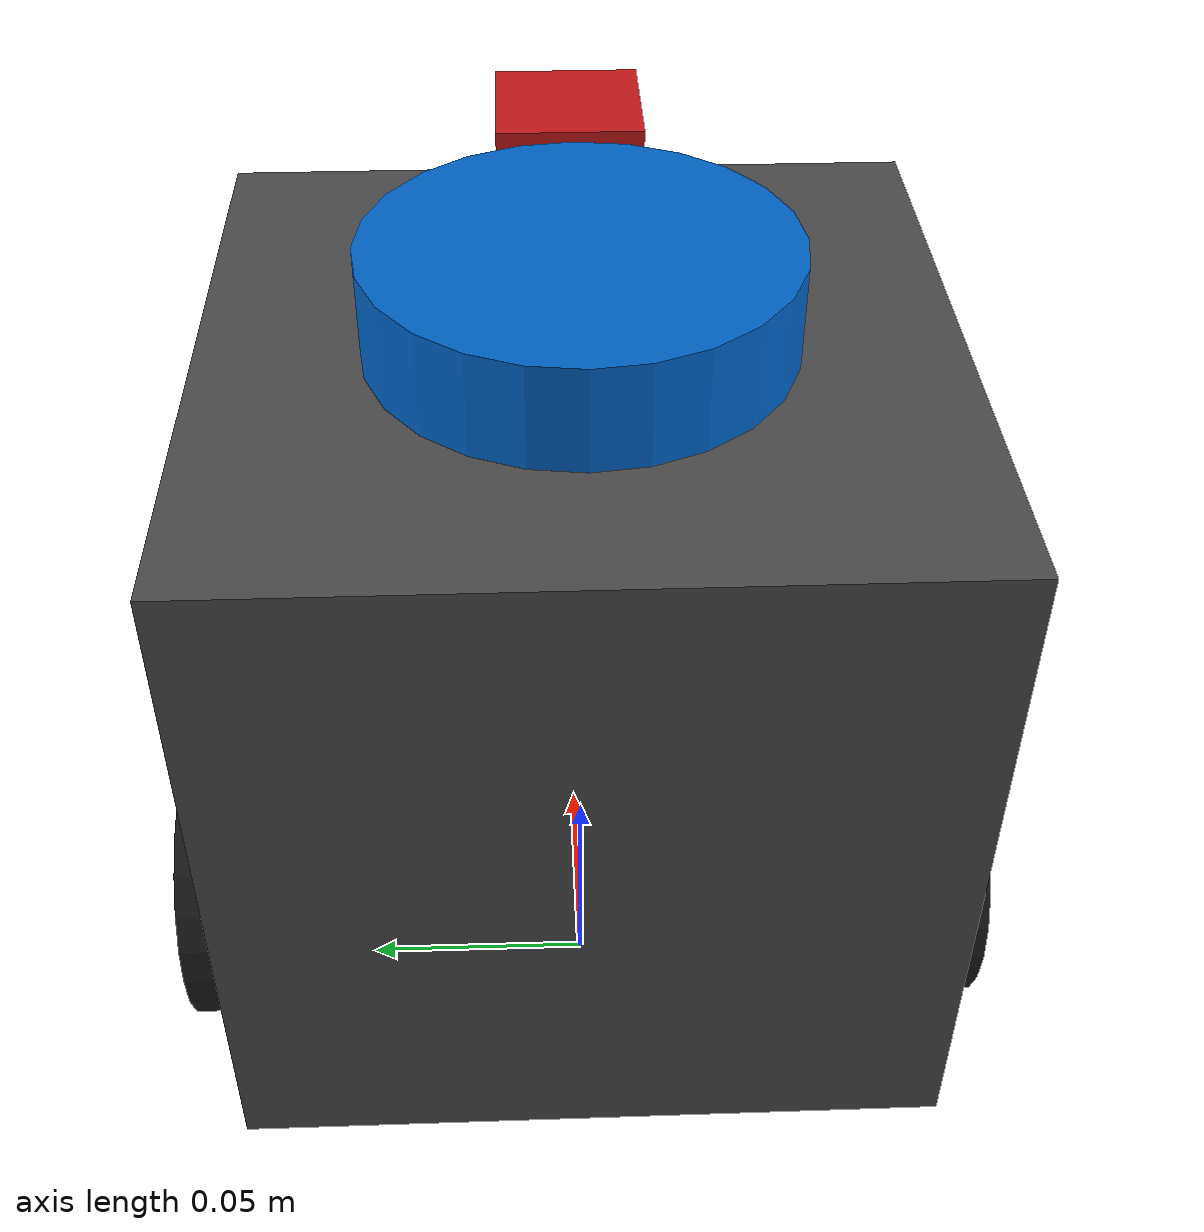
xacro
<?xml version="1.0"?>
<robot name="hermes" xmlns:xacro="http://www.ros.org/wiki/xacro">

  <!-- ── Constants (mirror hermes_sim.sdf) ───────────────────────────────── -->
  <xacro:property name="PI"               value="3.14159265359"/>
  <xacro:property name="body_size"        value="0.1397"/>  <!-- cube side, m -->
  <xacro:property name="wheel_radius"     value="0.0330"/>
  <xacro:property name="wheel_width"      value="0.0178"/>
  <xacro:property name="wheel_y"          value="0.0788"/>  <!-- body_size/2 + wheel_width/2 -->
  <xacro:property name="wheel_separation" value="0.1575"/>  <!-- 2 × wheel_y, m -->
  <xacro:property name="caster_radius"    value="0.0165"/>  <!-- wheel_radius/2, m -->
  <!-- body_z_spawn: height of base_link centre above ground -->
  <xacro:property name="body_z_spawn"     value="0.1029"/>  <!-- wheel_radius + body_size/2 -->

  <!-- ── base_footprint (virtual, ground-level) ─────────────────────────── -->
  <link name="base_footprint"/>

  <joint name="base_footprint_joint" type="fixed">
    <parent link="base_footprint"/>
    <child  link="base_link"/>
    <!-- base_link centre is body_z_spawn above the ground footprint -->
    <origin xyz="0 0 ${body_z_spawn}" rpy="0 0 0"/>
  </joint>

  <!-- ── base_link (cube body) ──────────────────────────────────────────── -->
  <link name="base_link">
    <visual>
      <geometry>
        <box size="${body_size} ${body_size} ${body_size}"/>
      </geometry>
      <material name="dark_grey">
        <color rgba="0.3 0.3 0.3 1.0"/>
      </material>
    </visual>
    <collision>
      <geometry>
        <box size="${body_size} ${body_size} ${body_size}"/>
      </geometry>
    </collision>
    <inertial>
      <mass value="5.0"/>
      <!-- Solid cube: I = m·s²/6 = 5.0·0.1397²/6 ≈ 0.01627 each axis -->
      <inertia ixx="0.01627" ixy="0.0" ixz="0.0"
               iyy="0.01627" iyz="0.0"
               izz="0.01627"/>
    </inertial>
  </link>

  <!-- ── Left wheel ─────────────────────────────────────────────────────── -->
  <link name="wheel_left_link">
    <visual>
      <origin xyz="0 0 0" rpy="${PI/2} 0 0"/>
      <geometry>
        <cylinder radius="${wheel_radius}" length="${wheel_width}"/>
      </geometry>
      <material name="black">
        <color rgba="0.1 0.1 0.1 1.0"/>
      </material>
    </visual>
    <collision>
      <origin xyz="0 0 0" rpy="${PI/2} 0 0"/>
      <geometry>
        <cylinder radius="${wheel_radius}" length="${wheel_width}"/>
      </geometry>
    </collision>
    <inertial>
      <mass value="0.5"/>
      <!-- Solid cylinder: Ixx=Iyy=m(3r²+h²)/12, Izz=mr²/2 -->
      <inertia ixx="0.000149" ixy="0.0" ixz="0.0"
               iyy="0.000149" iyz="0.0"
               izz="0.000272"/>
    </inertial>
  </link>

  <!-- wheel axis at the bottom face of the body: z = -body_size/2 = -0.0699 -->
  <joint name="wheel_left_joint" type="continuous">
    <parent link="base_link"/>
    <child  link="wheel_left_link"/>
    <origin xyz="0 ${wheel_y} ${-body_size/2}" rpy="0 0 0"/>
    <axis xyz="0 1 0"/>
  </joint>

  <!-- ── Right wheel ────────────────────────────────────────────────────── -->
  <link name="wheel_right_link">
    <visual>
      <origin xyz="0 0 0" rpy="${PI/2} 0 0"/>
      <geometry>
        <cylinder radius="${wheel_radius}" length="${wheel_width}"/>
      </geometry>
      <material name="black">
        <color rgba="0.1 0.1 0.1 1.0"/>
      </material>
    </visual>
    <collision>
      <origin xyz="0 0 0" rpy="${PI/2} 0 0"/>
      <geometry>
        <cylinder radius="${wheel_radius}" length="${wheel_width}"/>
      </geometry>
    </collision>
    <inertial>
      <mass value="0.5"/>
      <inertia ixx="0.000149" ixy="0.0" ixz="0.0"
               iyy="0.000149" iyz="0.0"
               izz="0.000272"/>
    </inertial>
  </link>

  <joint name="wheel_right_joint" type="continuous">
    <parent link="base_link"/>
    <child  link="wheel_right_link"/>
    <origin xyz="0 ${-wheel_y} ${-body_size/2}" rpy="0 0 0"/>
    <axis xyz="0 1 0"/>
  </joint>

  <!-- ── Caster wheel (passive ball, zero friction) ─────────────────────── -->
  <!--   x = body_size/2 - caster_radius = 0.0699 - 0.0165 = 0.0534 m       -->
  <!--   z = caster_radius - body_z_spawn = 0.0165 - 0.1029 = -0.0864 m     -->
  <link name="caster_link">
    <visual>
      <geometry>
        <sphere radius="${caster_radius}"/>
      </geometry>
      <material name="light_grey">
        <color rgba="0.6 0.6 0.6 1.0"/>
      </material>
    </visual>
    <collision>
      <geometry>
        <sphere radius="${caster_radius}"/>
      </geometry>
    </collision>
    <inertial>
      <mass value="0.1"/>
      <inertia ixx="0.00001" ixy="0.0" ixz="0.0"
               iyy="0.00001" iyz="0.0"
               izz="0.00001"/>
    </inertial>
  </link>

  <joint name="caster_joint" type="fixed">
    <parent link="base_link"/>
    <child  link="caster_link"/>
    <!-- Front of base, sphere centre at ground level -->
    <origin xyz="0.0534 0 -0.0864" rpy="0 0 0"/>
  </joint>

  <!-- ── laser_frame (2-D LiDAR, on top of body) ───────────────────────── -->
  <!--   z = +body_size/2 = +0.0699 m relative to base_link centre          -->
  <link name="laser_frame">
    <visual>
      <geometry>
        <cylinder radius="0.04" length="0.04"/>
      </geometry>
      <material name="blue">
        <color rgba="0.0 0.4 0.8 1.0"/>
      </material>
    </visual>
    <collision>
      <geometry>
        <cylinder radius="0.04" length="0.04"/>
      </geometry>
    </collision>
    <inertial>
      <mass value="0.1"/>
      <inertia ixx="0.00001" ixy="0.0" ixz="0.0"
               iyy="0.00001" iyz="0.0"
               izz="0.00001"/>
    </inertial>
  </link>

  <joint name="laser_joint" type="fixed">
    <parent link="base_link"/>
    <child  link="laser_frame"/>
    <origin xyz="0 0 ${body_size/2}" rpy="0 0 0"/>
  </joint>

  <!-- ── camera_frame (front-top corner of body) ───────────────────────── -->
  <!--   x = body_size/2 = 0.0699 m (front face)                            -->
  <!--   z = body_size/2 = 0.0699 m (top face)                              -->
  <link name="camera_frame">
    <visual>
      <geometry>
        <box size="0.03 0.03 0.03"/>
      </geometry>
      <material name="red">
        <color rgba="0.8 0.1 0.1 1.0"/>
      </material>
    </visual>
    <inertial>
      <mass value="0.05"/>
      <inertia ixx="0.00001" ixy="0.0" ixz="0.0"
               iyy="0.00001" iyz="0.0"
               izz="0.00001"/>
    </inertial>
  </link>

  <joint name="camera_joint" type="fixed">
    <parent link="base_link"/>
    <child  link="camera_frame"/>
    <origin xyz="${body_size/2} 0 ${body_size/2}" rpy="0 0 0"/>
  </joint>

  <!-- Differential drive controller ──────────────────────────────────────── -->
  <gazebo>
    <plugin filename="gz-sim-diff-drive-system"
            name="gz::sim::systems::DiffDrive">
      <left_joint>wheel_left_joint</left_joint>
      <right_joint>wheel_right_joint</right_joint>
      <wheel_separation>${wheel_separation}</wheel_separation>
      <wheel_radius>${wheel_radius}</wheel_radius>
      <odom_publish_frequency>20</odom_publish_frequency>
      <!-- Topics (bridged to ROS 2 by ros_gz_bridge) -->
      <topic>cmd_vel</topic>
      <odom_topic>odom</odom_topic>
      <tf_topic>tf</tf_topic>
      <frame_id>odom</frame_id>
      <child_frame_id>base_footprint</child_frame_id>
      <min_velocity>-0.5</min_velocity>
      <max_velocity>0.5</max_velocity>
      <min_acceleration>-1.0</min_acceleration>
      <max_acceleration>1.0</max_acceleration>
    </plugin>

    <!-- Joint state publisher for wheel joints -->
    <plugin filename="gz-sim-joint-state-publisher-system"
            name="gz::sim::systems::JointStatePublisher">
      <topic>joint_states</topic>
      <joint_name>wheel_left_joint</joint_name>
      <joint_name>wheel_right_joint</joint_name>
    </plugin>
  </gazebo>

  <!-- Zero friction on the caster so it slides freely ───────────────────── -->
  <gazebo reference="caster_link">
    <mu1>0.0</mu1>
    <mu2>0.0</mu2>
  </gazebo>

  <!-- 2-D LiDAR (360°, 10 Hz, 12 m range) ─────────────────────────────── -->
  <gazebo reference="laser_frame">
    <sensor name="lidar" type="gpu_lidar">
      <topic>/scan</topic>
      <update_rate>10</update_rate>
      <always_on>true</always_on>
      <visualize>false</visualize>
      <gz_frame_id>laser_frame</gz_frame_id>
      <lidar>
        <scan>
          <horizontal>
            <samples>360</samples>
            <resolution>1</resolution>
            <min_angle>-3.14159265</min_angle>
            <max_angle>3.14159265</max_angle>
          </horizontal>
        </scan>
        <range>
          <min>0.10</min>
          <max>12.0</max>
          <resolution>0.01</resolution>
        </range>
        <noise>
          <type>gaussian</type>
          <mean>0.0</mean>
          <stddev>0.01</stddev>
        </noise>
      </lidar>
    </sensor>
  </gazebo>

</robot>
